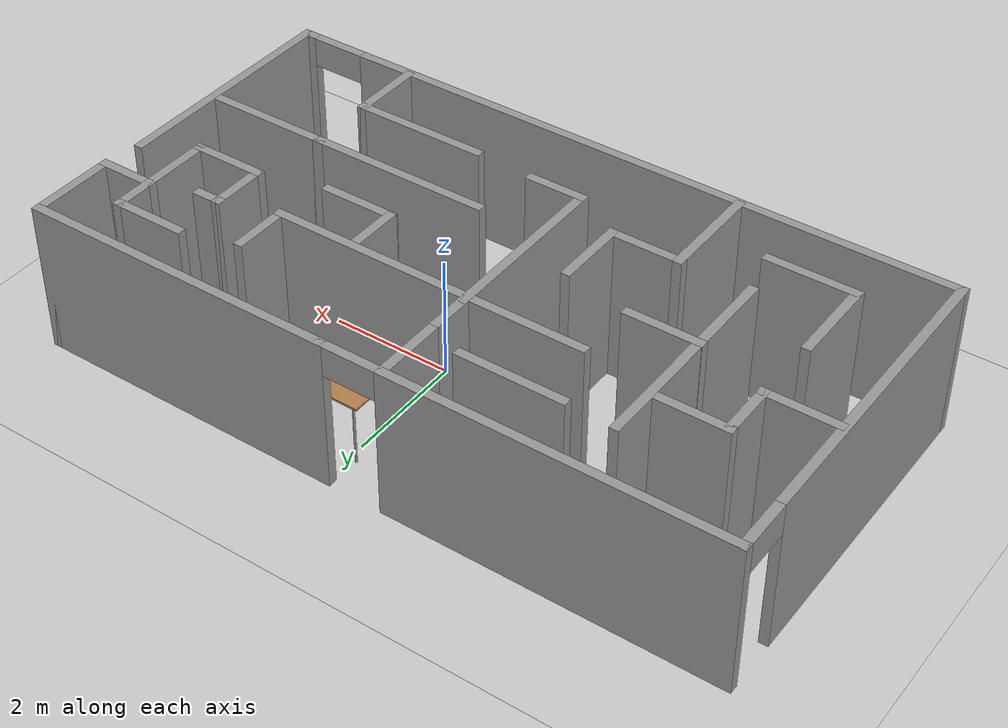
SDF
<sdf version="1.7">
 <world name="default">
  <light name="sun" type="directional">
   <pose>0 0 10 0 -0 0</pose>
   <diffuse>0.8 0.8 0.8 1</diffuse>
   <specular>0.2 0.2 0.2 1</specular>
   <attenuation>
    <range>1000</range>
    <constant>0.9</constant>
    <linear>0.01</linear>
    <quadratic>0.001</quadratic>
   </attenuation>
   <direction>-0.5 0.1 -0.9</direction>
   <spot><inner_angle>0</inner_angle><outer_angle>0</outer_angle><falloff>0</falloff></spot>
  </light>
  <gravity>0 0 -9.8</gravity>
  <magnetic_field>6e-06 2.3e-05 -4.2e-05</magnetic_field>
  <atmosphere type="adiabatic"/>
  <physics type="ode">
   <max_step_size>0.001</max_step_size>
   <real_time_factor>1</real_time_factor>
   <real_time_update_rate>1000</real_time_update_rate>
  </physics>
  <scene><ambient>0.4 0.4 0.4 1</ambient><background>0.7 0.7 0.7 1</background><shadows>1</shadows></scene>
  <audio><device>default</device></audio>
  <spherical_coordinates>
   <surface_model>EARTH_WGS84</surface_model>
   <latitude_deg>0</latitude_deg>
   <longitude_deg>0</longitude_deg>
   <elevation>0</elevation>
   <heading_deg>0</heading_deg>
  </spherical_coordinates>
  <model name="table">
   <static>1</static>
   <link name="link">
    <collision name="surface">
     <pose>0 0 1 0 -0 0</pose>
     <geometry><box><size>1.5 0.8 0.03</size></box></geometry>
     <surface><friction><ode><mu>0.6</mu><mu2>0.6</mu2></ode></friction></surface>
    </collision>
    <visual name="visual1">
     <pose>0 0 1 0 -0 0</pose>
     <geometry><box><size>1.5 0.8 0.03</size></box></geometry>
     <material>
      <script><uri>file://media/materials/scripts/gazebo.material</uri><name>Gazebo/Wood</name></script>
     </material>
    </visual>
    <collision name="front_left_leg">
     <pose>0.68 0.38 0.5 0 -0 0</pose>
     <geometry><cylinder><radius>0.02</radius><length>1</length></cylinder></geometry>
    </collision>
    <visual name="front_left_leg">
     <pose>0.68 0.38 0.5 0 -0 0</pose>
     <geometry><cylinder><radius>0.02</radius><length>1</length></cylinder></geometry>
     <material>
      <script><uri>file://media/materials/scripts/gazebo.material</uri><name>Gazebo/Grey</name></script>
     </material>
    </visual>
    <collision name="front_right_leg">
     <pose>0.68 -0.38 0.5 0 -0 0</pose>
     <geometry><cylinder><radius>0.02</radius><length>1</length></cylinder></geometry>
    </collision>
    <visual name="front_right_leg">
     <pose>0.68 -0.38 0.5 0 -0 0</pose>
     <geometry><cylinder><radius>0.02</radius><length>1</length></cylinder></geometry>
     <material>
      <script><uri>file://media/materials/scripts/gazebo.material</uri><name>Gazebo/Grey</name></script>
     </material>
    </visual>
    <collision name="back_right_leg">
     <pose>-0.68 -0.38 0.5 0 -0 0</pose>
     <geometry><cylinder><radius>0.02</radius><length>1</length></cylinder></geometry>
    </collision>
    <visual name="back_right_leg">
     <pose>-0.68 -0.38 0.5 0 -0 0</pose>
     <geometry><cylinder><radius>0.02</radius><length>1</length></cylinder></geometry>
     <material>
      <script><uri>file://media/materials/scripts/gazebo.material</uri><name>Gazebo/Grey</name></script>
     </material>
    </visual>
    <collision name="back_left_leg">
     <pose>-0.68 0.38 0.5 0 -0 0</pose>
     <geometry><cylinder><radius>0.02</radius><length>1</length></cylinder></geometry>
    </collision>
    <visual name="back_left_leg">
     <pose>-0.68 0.38 0.5 0 -0 0</pose>
     <geometry><cylinder><radius>0.02</radius><length>1</length></cylinder></geometry>
     <material>
      <script><uri>file://media/materials/scripts/gazebo.material</uri><name>Gazebo/Grey</name></script>
     </material>
    </visual>
   </link>
   <pose>0.560017 1.89403 0 0 -0 0</pose>
  </model>
  <model name="ground_plane">
   <static>1</static>
   <link name="link">
    <collision name="collision">
     <geometry><plane><normal>0 0 1</normal><size>100 100</size></plane></geometry>
     <surface>
      <contact><collide_bitmask>65535</collide_bitmask></contact>
      <friction><ode><mu>100</mu><mu2>50</mu2></ode></friction>
     </surface>
    </collision>
    <visual name="visual">
     <cast_shadows>0</cast_shadows>
     <geometry><plane><normal>0 0 1</normal><size>100 100</size></plane></geometry>
     <material>
      <script><uri>file://media/materials/scripts/gazebo.material</uri><name>Gazebo/Grey</name></script>
     </material>
    </visual>
   </link>
  </model>
  <model name="Maze">
   <pose>-0.678821 0.616067 0 0 -0 0</pose>
   <link name="Wall_0">
    <collision name="Wall_0_Collision">
     <geometry><box><size>5.25 0.15 2.5</size></box></geometry>
     <pose>0 0 1.25 0 -0 0</pose>
    </collision>
    <visual name="Wall_0_Visual">
     <pose>0 0 1.25 0 -0 0</pose>
     <geometry><box><size>5.25 0.15 2.5</size></box></geometry>
     <material>
      <script><uri>file://media/materials/scripts/gazebo.material</uri><name>Gazebo/Grey</name></script>
      <ambient>1 1 1 1</ambient>
     </material>
     <meta><layer>0</layer></meta>
    </visual>
    <pose>3.175 2.18272 0 0 -0 0</pose>
   </link>
   <link name="Wall_1">
    <collision name="Wall_1_Collision">
     <geometry><box><size>1.5 0.15 2.5</size></box></geometry>
     <pose>0 0 1.25 0 -0 0</pose>
    </collision>
    <visual name="Wall_1_Visual">
     <pose>0 0 1.25 0 -0 0</pose>
     <geometry><box><size>1.5 0.15 2.5</size></box></geometry>
     <material>
      <script><uri>file://media/materials/scripts/gazebo.material</uri><name>Gazebo/Grey</name></script>
      <ambient>1 1 1 1</ambient>
     </material>
     <meta><layer>0</layer></meta>
    </visual>
    <pose>5.725 1.50772 0 0 -0 -1.5708</pose>
   </link>
   <link name="Wall_11">
    <pose>-2.55 2.18272 0 0 -0 3.14159</pose>
    <visual name="Wall_11_Visual_0">
     <pose>-3.19088 0 1.25 0 -0 0</pose>
     <geometry><box><size>0.118239 0.15 2.5</size></box></geometry>
     <material>
      <script><uri>file://media/materials/scripts/gazebo.material</uri><name>Gazebo/Grey</name></script>
      <ambient>1 1 1 1</ambient>
     </material>
     <meta><layer>0</layer></meta>
    </visual>
    <collision name="Wall_11_Collision_0">
     <geometry><box><size>0.118239 0.15 2.5</size></box></geometry>
     <pose>-3.19088 0 1.25 0 -0 0</pose>
    </collision>
    <visual name="Wall_11_Visual_1">
     <pose>0.509119 0 1.25 0 -0 0</pose>
     <geometry><box><size>5.48176 0.15 2.5</size></box></geometry>
     <material>
      <script><uri>file://media/materials/scripts/gazebo.material</uri><name>Gazebo/Grey</name></script>
      <ambient>1 1 1 1</ambient>
     </material>
     <meta><layer>0</layer></meta>
    </visual>
    <collision name="Wall_11_Collision_1">
     <geometry><box><size>5.48176 0.15 2.5</size></box></geometry>
     <pose>0.509119 0 1.25 0 -0 0</pose>
    </collision>
    <visual name="Wall_11_Visual_2">
     <pose>-2.68176 0 2.25 0 -0 0</pose>
     <geometry><box><size>0.9 0.15 0.5</size></box></geometry>
     <material>
      <script><uri>file://media/materials/scripts/gazebo.material</uri><name>Gazebo/Grey</name></script>
      <ambient>1 1 1 1</ambient>
     </material>
     <meta><layer>0</layer></meta>
    </visual>
    <collision name="Wall_11_Collision_2">
     <geometry><box><size>0.9 0.15 0.5</size></box></geometry>
     <pose>-2.68176 0 2.25 0 -0 0</pose>
    </collision>
   </link>
   <link name="Wall_12">
    <pose>-5.725 -0.742282 0 0 -0 -1.5708</pose>
    <visual name="Wall_12_Visual_0">
     <pose>-2.98042 0 1.25 0 -0 0</pose>
     <geometry><box><size>0.039169 0.15 2.5</size></box></geometry>
     <material>
      <script><uri>file://media/materials/scripts/gazebo.material</uri><name>Gazebo/Grey</name></script>
      <ambient>1 1 1 1</ambient>
     </material>
     <meta><layer>0</layer></meta>
    </visual>
    <collision name="Wall_12_Collision_0">
     <geometry><box><size>0.039169 0.15 2.5</size></box></geometry>
     <pose>-2.98042 0 1.25 0 -0 0</pose>
    </collision>
    <visual name="Wall_12_Visual_1">
     <pose>0.469584 0 1.25 0 -0 0</pose>
     <geometry><box><size>5.06083 0.15 2.5</size></box></geometry>
     <material>
      <script><uri>file://media/materials/scripts/gazebo.material</uri><name>Gazebo/Grey</name></script>
      <ambient>1 1 1 1</ambient>
     </material>
     <meta><layer>0</layer></meta>
    </visual>
    <collision name="Wall_12_Collision_1">
     <geometry><box><size>5.06083 0.15 2.5</size></box></geometry>
     <pose>0.469584 0 1.25 0 -0 0</pose>
    </collision>
    <visual name="Wall_12_Visual_2">
     <pose>-2.51083 0 2.25 0 -0 0</pose>
     <geometry><box><size>0.9 0.15 0.5</size></box></geometry>
     <material>
      <script><uri>file://media/materials/scripts/gazebo.material</uri><name>Gazebo/Grey</name></script>
      <ambient>1 1 1 1</ambient>
     </material>
     <meta><layer>0</layer></meta>
    </visual>
    <collision name="Wall_12_Collision_2">
     <geometry><box><size>0.9 0.15 0.5</size></box></geometry>
     <pose>-2.51083 0 2.25 0 -0 0</pose>
    </collision>
   </link>
   <link name="Wall_13">
    <pose>-0.05 -3.66728 0 0 -0 0</pose>
    <visual name="Wall_13_Visual_0">
     <pose>-0.59542 0 1.25 0 -0 0</pose>
     <geometry><box><size>10.3092 0.15 2.5</size></box></geometry>
     <material>
      <script><uri>file://media/materials/scripts/gazebo.material</uri><name>Gazebo/Grey</name></script>
      <ambient>1 1 1 1</ambient>
     </material>
     <meta><layer>0</layer></meta>
    </visual>
    <collision name="Wall_13_Collision_0">
     <geometry><box><size>10.3092 0.15 2.5</size></box></geometry>
     <pose>-0.59542 0 1.25 0 -0 0</pose>
    </collision>
    <visual name="Wall_13_Visual_1">
     <pose>5.60458 0 1.25 0 -0 0</pose>
     <geometry><box><size>0.29084 0.15 2.5</size></box></geometry>
     <material>
      <script><uri>file://media/materials/scripts/gazebo.material</uri><name>Gazebo/Grey</name></script>
      <ambient>1 1 1 1</ambient>
     </material>
     <meta><layer>0</layer></meta>
    </visual>
    <collision name="Wall_13_Collision_1">
     <geometry><box><size>0.29084 0.15 2.5</size></box></geometry>
     <pose>5.60458 0 1.25 0 -0 0</pose>
    </collision>
    <visual name="Wall_13_Visual_2">
     <pose>5.00916 0 2.25 0 -0 0</pose>
     <geometry><box><size>0.9 0.15 0.5</size></box></geometry>
     <material>
      <script><uri>file://media/materials/scripts/gazebo.material</uri><name>Gazebo/Grey</name></script>
      <ambient>1 1 1 1</ambient>
     </material>
     <meta><layer>0</layer></meta>
    </visual>
    <collision name="Wall_13_Collision_2">
     <geometry><box><size>0.9 0.15 0.5</size></box></geometry>
     <pose>5.00916 0 2.25 0 -0 0</pose>
    </collision>
   </link>
   <link name="Wall_14">
    <collision name="Wall_14_Collision">
     <geometry><box><size>4 0.15 2.5</size></box></geometry>
     <pose>0 0 1.25 0 -0 0</pose>
    </collision>
    <visual name="Wall_14_Visual">
     <pose>0 0 1.25 0 -0 0</pose>
     <geometry><box><size>4 0.15 2.5</size></box></geometry>
     <material>
      <script><uri>file://media/materials/scripts/gazebo.material</uri><name>Gazebo/Grey</name></script>
      <ambient>1 1 1 1</ambient>
     </material>
     <meta><layer>0</layer></meta>
    </visual>
    <pose>5.625 -1.74228 0 0 -0 1.5708</pose>
   </link>
   <link name="Wall_19">
    <collision name="Wall_19_Collision">
     <geometry><box><size>1.75 0.15 2.5</size></box></geometry>
     <pose>0 0 1.25 0 -0 0</pose>
    </collision>
    <visual name="Wall_19_Visual">
     <pose>0 0 1.25 0 -0 0</pose>
     <geometry><box><size>1.75 0.15 2.5</size></box></geometry>
     <material>
      <script><uri>file://media/materials/scripts/gazebo.material</uri><name>Gazebo/Grey</name></script>
      <ambient>1 1 1 1</ambient>
     </material>
     <meta><layer>0</layer></meta>
    </visual>
    <pose>-2.28694 -2.82537 0 0 -0 -1.5708</pose>
   </link>
   <link name="Wall_2">
    <collision name="Wall_2_Collision">
     <geometry><box><size>1 0.15 2.5</size></box></geometry>
     <pose>0 0 1.25 0 -0 0</pose>
    </collision>
    <visual name="Wall_2_Visual">
     <pose>0 0 1.25 0 -0 0</pose>
     <geometry><box><size>1 0.15 2.5</size></box></geometry>
     <material>
      <script><uri>file://media/materials/scripts/gazebo.material</uri><name>Gazebo/Grey</name></script>
      <ambient>1 1 1 1</ambient>
     </material>
     <meta><layer>0</layer></meta>
    </visual>
    <pose>5.3 0.832718 0 0 -0 3.14159</pose>
   </link>
   <link name="Wall_22">
    <collision name="Wall_22_Collision">
     <geometry><box><size>3 0.15 2.5</size></box></geometry>
     <pose>0 0 1.25 0 -0 0</pose>
    </collision>
    <visual name="Wall_22_Visual">
     <pose>0 0 1.25 0 -0 0</pose>
     <geometry><box><size>3 0.15 2.5</size></box></geometry>
     <material>
      <script><uri>file://media/materials/scripts/gazebo.material</uri><name>Gazebo/Grey</name></script>
      <ambient>1 1 1 1</ambient>
     </material>
     <meta><layer>0</layer></meta>
    </visual>
    <pose>2.1105 -1.43729 0 0 -0 0</pose>
   </link>
   <link name="Wall_23">
    <collision name="Wall_23_Collision">
     <geometry><box><size>0.25 0.15 2.5</size></box></geometry>
     <pose>0 0 1.25 0 -0 0</pose>
    </collision>
    <visual name="Wall_23_Visual">
     <pose>0 0 1.25 0 -0 0</pose>
     <geometry><box><size>0.25 0.15 2.5</size></box></geometry>
     <material>
      <script><uri>file://media/materials/scripts/gazebo.material</uri><name>Gazebo/Grey</name></script>
      <ambient>1 1 1 1</ambient>
     </material>
     <meta><layer>0</layer></meta>
    </visual>
    <pose>3.5855 -1.43729 0 0 -0 0</pose>
   </link>
   <link name="Wall_24">
    <collision name="Wall_24_Collision">
     <geometry><box><size>2 0.15 2.5</size></box></geometry>
     <pose>0 0 1.25 0 -0 0</pose>
    </collision>
    <visual name="Wall_24_Visual">
     <pose>0 0 1.25 0 -0 0</pose>
     <geometry><box><size>2 0.15 2.5</size></box></geometry>
     <material>
      <script><uri>file://media/materials/scripts/gazebo.material</uri><name>Gazebo/Grey</name></script>
      <ambient>1 1 1 1</ambient>
     </material>
     <meta><layer>0</layer></meta>
    </visual>
    <pose>4.5605 -1.43729 0 0 -0 0</pose>
   </link>
   <link name="Wall_26">
    <collision name="Wall_26_Collision">
     <geometry><box><size>1.25 0.15 2.5</size></box></geometry>
     <pose>0 0 1.25 0 -0 0</pose>
    </collision>
    <visual name="Wall_26_Visual">
     <pose>0 0 1.25 0 -0 0</pose>
     <geometry><box><size>1.25 0.15 2.5</size></box></geometry>
     <material>
      <script><uri>file://media/materials/scripts/gazebo.material</uri><name>Gazebo/Grey</name></script>
      <ambient>1 1 1 1</ambient>
     </material>
     <meta><layer>0</layer></meta>
    </visual>
    <pose>-1.73694 -2.02537 0 0 -0 0</pose>
   </link>
   <link name="Wall_27">
    <collision name="Wall_27_Collision">
     <geometry><box><size>1.25 0.15 2.5</size></box></geometry>
     <pose>0 0 1.25 0 -0 0</pose>
    </collision>
    <visual name="Wall_27_Visual">
     <pose>0 0 1.25 0 -0 0</pose>
     <geometry><box><size>1.25 0.15 2.5</size></box></geometry>
     <material>
      <script><uri>file://media/materials/scripts/gazebo.material</uri><name>Gazebo/Grey</name></script>
      <ambient>1 1 1 1</ambient>
     </material>
     <meta><layer>0</layer></meta>
    </visual>
    <pose>-1.18694 -1.47537 0 0 -0 1.5708</pose>
   </link>
   <link name="Wall_29">
    <collision name="Wall_29_Collision">
     <geometry><box><size>3.5 0.15 2.5</size></box></geometry>
     <pose>0 0 1.25 0 -0 0</pose>
    </collision>
    <visual name="Wall_29_Visual">
     <pose>0 0 1.25 0 -0 0</pose>
     <geometry><box><size>3.5 0.15 2.5</size></box></geometry>
     <material>
      <script><uri>file://media/materials/scripts/gazebo.material</uri><name>Gazebo/Grey</name></script>
      <ambient>1 1 1 1</ambient>
     </material>
     <meta><layer>0</layer></meta>
    </visual>
    <pose>-3.41126 -0.359615 0 0 -0 -1.5708</pose>
   </link>
   <link name="Wall_3">
    <collision name="Wall_3_Collision">
     <geometry><box><size>0.75 0.15 2.5</size></box></geometry>
     <pose>0 0 1.25 0 -0 0</pose>
    </collision>
    <visual name="Wall_3_Visual">
     <pose>0 0 1.25 0 -0 0</pose>
     <geometry><box><size>0.75 0.15 2.5</size></box></geometry>
     <material>
      <script><uri>file://media/materials/scripts/gazebo.material</uri><name>Gazebo/Grey</name></script>
      <ambient>1 1 1 1</ambient>
     </material>
     <meta><layer>0</layer></meta>
    </visual>
    <pose>4.875 1.13272 0 0 -0 1.5708</pose>
   </link>
   <link name="Wall_31">
    <collision name="Wall_31_Collision">
     <geometry><box><size>1.25 0.15 2.5</size></box></geometry>
     <pose>0 0 1.25 0 -0 0</pose>
    </collision>
    <visual name="Wall_31_Visual">
     <pose>0 0 1.25 0 -0 0</pose>
     <geometry><box><size>1.25 0.15 2.5</size></box></geometry>
     <material>
      <script><uri>file://media/materials/scripts/gazebo.material</uri><name>Gazebo/Grey</name></script>
      <ambient>1 1 1 1</ambient>
     </material>
     <meta><layer>0</layer></meta>
    </visual>
    <pose>-4.02093 0.539789 0 0 -0 3.14159</pose>
   </link>
   <link name="Wall_32">
    <collision name="Wall_32_Collision">
     <geometry><box><size>1 0.15 2.5</size></box></geometry>
     <pose>0 0 1.25 0 -0 0</pose>
    </collision>
    <visual name="Wall_32_Visual">
     <pose>0 0 1.25 0 -0 0</pose>
     <geometry><box><size>1 0.15 2.5</size></box></geometry>
     <material>
      <script><uri>file://media/materials/scripts/gazebo.material</uri><name>Gazebo/Grey</name></script>
      <ambient>1 1 1 1</ambient>
     </material>
     <meta><layer>0</layer></meta>
    </visual>
    <pose>-4.57092 0.114789 0 0 -0 -1.5708</pose>
   </link>
   <link name="Wall_33">
    <collision name="Wall_33_Collision">
     <geometry><box><size>1.25 0.15 2.5</size></box></geometry>
     <pose>0 0 1.25 0 -0 0</pose>
    </collision>
    <visual name="Wall_33_Visual">
     <pose>0 0 1.25 0 -0 0</pose>
     <geometry><box><size>1.25 0.15 2.5</size></box></geometry>
     <material>
      <script><uri>file://media/materials/scripts/gazebo.material</uri><name>Gazebo/Grey</name></script>
      <ambient>1 1 1 1</ambient>
     </material>
     <meta><layer>0</layer></meta>
    </visual>
    <pose>-5.12092 -0.310211 0 0 -0 3.14159</pose>
   </link>
   <link name="Wall_35">
    <collision name="Wall_35_Collision">
     <geometry><box><size>5.25 0.15 2.5</size></box></geometry>
     <pose>0 0 1.25 0 -0 0</pose>
    </collision>
    <visual name="Wall_35_Visual">
     <pose>0 0 1.25 0 -0 0</pose>
     <geometry><box><size>5.25 0.15 2.5</size></box></geometry>
     <material>
      <script><uri>file://media/materials/scripts/gazebo.material</uri><name>Gazebo/Grey</name></script>
      <ambient>1 1 1 1</ambient>
     </material>
     <meta><layer>0</layer></meta>
    </visual>
    <pose>0.312074 0.301145 0 0 -0 0</pose>
   </link>
   <link name="Wall_36">
    <collision name="Wall_36_Collision">
     <geometry><box><size>1 0.15 2.5</size></box></geometry>
     <pose>0 0 1.25 0 -0 0</pose>
    </collision>
    <visual name="Wall_36_Visual">
     <pose>0 0 1.25 0 -0 0</pose>
     <geometry><box><size>1 0.15 2.5</size></box></geometry>
     <material>
      <script><uri>file://media/materials/scripts/gazebo.material</uri><name>Gazebo/Grey</name></script>
      <ambient>1 1 1 1</ambient>
     </material>
     <meta><layer>0</layer></meta>
    </visual>
    <pose>2.86207 0.726145 0 0 -0 1.5708</pose>
   </link>
   <link name="Wall_38">
    <collision name="Wall_38_Collision">
     <geometry><box><size>3 0.15 2.5</size></box></geometry>
     <pose>0 0 1.25 0 -0 0</pose>
    </collision>
    <visual name="Wall_38_Visual">
     <pose>0 0 1.25 0 -0 0</pose>
     <geometry><box><size>3 0.15 2.5</size></box></geometry>
     <material>
      <script><uri>file://media/materials/scripts/gazebo.material</uri><name>Gazebo/Grey</name></script>
      <ambient>1 1 1 1</ambient>
     </material>
     <meta><layer>0</layer></meta>
    </visual>
    <pose>-0.388429 -1.04431 0 0 -0 -1.5708</pose>
   </link>
   <link name="Wall_4">
    <collision name="Wall_4_Collision">
     <geometry><box><size>1.25 0.15 2.5</size></box></geometry>
     <pose>0 0 1.25 0 -0 0</pose>
    </collision>
    <visual name="Wall_4_Visual">
     <pose>0 0 1.25 0 -0 0</pose>
     <geometry><box><size>1.25 0.15 2.5</size></box></geometry>
     <material>
      <script><uri>file://media/materials/scripts/gazebo.material</uri><name>Gazebo/Grey</name></script>
      <ambient>1 1 1 1</ambient>
     </material>
     <meta><layer>0</layer></meta>
    </visual>
    <pose>4.325 1.43272 0 0 -0 3.14159</pose>
   </link>
   <link name="Wall_40">
    <collision name="Wall_40_Collision">
     <geometry><box><size>0.75 0.15 2.5</size></box></geometry>
     <pose>0 0 1.25 0 -0 0</pose>
    </collision>
    <visual name="Wall_40_Visual">
     <pose>0 0 1.25 0 -0 0</pose>
     <geometry><box><size>0.75 0.15 2.5</size></box></geometry>
     <material>
      <script><uri>file://media/materials/scripts/gazebo.material</uri><name>Gazebo/Grey</name></script>
      <ambient>1 1 1 1</ambient>
     </material>
     <meta><layer>0</layer></meta>
    </visual>
    <pose>-0.388429 0.680693 0 0 -0 1.5708</pose>
   </link>
   <link name="Wall_41">
    <collision name="Wall_41_Collision">
     <geometry><box><size>1.25 0.15 2.5</size></box></geometry>
     <pose>0 0 1.25 0 -0 0</pose>
    </collision>
    <visual name="Wall_41_Visual">
     <pose>0 0 1.25 0 -0 0</pose>
     <geometry><box><size>1.25 0.15 2.5</size></box></geometry>
     <material>
      <script><uri>file://media/materials/scripts/gazebo.material</uri><name>Gazebo/Grey</name></script>
      <ambient>1 1 1 1</ambient>
     </material>
     <meta><layer>0</layer></meta>
    </visual>
    <pose>-0.388429 1.53069 0 0 -0 1.5708</pose>
   </link>
   <link name="Wall_43">
    <collision name="Wall_43_Collision">
     <geometry><box><size>1.75 0.15 2.5</size></box></geometry>
     <pose>0 0 1.25 0 -0 0</pose>
    </collision>
    <visual name="Wall_43_Visual">
     <pose>0 0 1.25 0 -0 0</pose>
     <geometry><box><size>1.75 0.15 2.5</size></box></geometry>
     <material>
      <script><uri>file://media/materials/scripts/gazebo.material</uri><name>Gazebo/Grey</name></script>
      <ambient>1 1 1 1</ambient>
     </material>
     <meta><layer>0</layer></meta>
    </visual>
    <pose>-1.79589 1.2955 0 0 -0 0</pose>
   </link>
   <link name="Wall_45">
    <collision name="Wall_45_Collision">
     <geometry><box><size>1.5 0.15 2.5</size></box></geometry>
     <pose>0 0 1.25 0 -0 0</pose>
    </collision>
    <visual name="Wall_45_Visual">
     <pose>0 0 1.25 0 -0 0</pose>
     <geometry><box><size>1.5 0.15 2.5</size></box></geometry>
     <material>
      <script><uri>file://media/materials/scripts/gazebo.material</uri><name>Gazebo/Grey</name></script>
      <ambient>1 1 1 1</ambient>
     </material>
     <meta><layer>0</layer></meta>
    </visual>
    <pose>-4.60449 -2.10403 0 0 -0 -1.5708</pose>
   </link>
   <link name="Wall_46">
    <collision name="Wall_46_Collision">
     <geometry><box><size>1.5 0.15 2.5</size></box></geometry>
     <pose>0 0 1.25 0 -0 0</pose>
    </collision>
    <visual name="Wall_46_Visual">
     <pose>0 0 1.25 0 -0 0</pose>
     <geometry><box><size>1.5 0.15 2.5</size></box></geometry>
     <material>
      <script><uri>file://media/materials/scripts/gazebo.material</uri><name>Gazebo/Grey</name></script>
      <ambient>1 1 1 1</ambient>
     </material>
     <meta><layer>0</layer></meta>
    </visual>
    <pose>-3.92949 -2.77903 0 0 -0 0</pose>
   </link>
   <link name="Wall_48">
    <collision name="Wall_48_Collision">
     <geometry><box><size>2.25 0.15 2.5</size></box></geometry>
     <pose>0 0 1.25 0 -0 0</pose>
    </collision>
    <visual name="Wall_48_Visual">
     <pose>0 0 1.25 0 -0 0</pose>
     <geometry><box><size>2.25 0.15 2.5</size></box></geometry>
     <material>
      <script><uri>file://media/materials/scripts/gazebo.material</uri><name>Gazebo/Grey</name></script>
      <ambient>1 1 1 1</ambient>
     </material>
     <meta><layer>0</layer></meta>
    </visual>
    <pose>2.53096 -2.52282 0 0 -0 0</pose>
   </link>
   <link name="Wall_49">
    <collision name="Wall_49_Collision">
     <geometry><box><size>1.25 0.15 2.5</size></box></geometry>
     <pose>0 0 1.25 0 -0 0</pose>
    </collision>
    <visual name="Wall_49_Visual">
     <pose>0 0 1.25 0 -0 0</pose>
     <geometry><box><size>1.25 0.15 2.5</size></box></geometry>
     <material>
      <script><uri>file://media/materials/scripts/gazebo.material</uri><name>Gazebo/Grey</name></script>
      <ambient>1 1 1 1</ambient>
     </material>
     <meta><layer>0</layer></meta>
    </visual>
    <pose>3.58096 -3.07282 0 0 -0 -1.5708</pose>
   </link>
   <link name="Wall_51">
    <collision name="Wall_51_Collision">
     <geometry><box><size>1.25 0.15 2.5</size></box></geometry>
     <pose>0 0 1.25 0 -0 0</pose>
    </collision>
    <visual name="Wall_51_Visual">
     <pose>0 0 1.25 0 -0 0</pose>
     <geometry><box><size>1.25 0.15 2.5</size></box></geometry>
     <material>
      <script><uri>file://media/materials/scripts/gazebo.material</uri><name>Gazebo/Grey</name></script>
      <ambient>1 1 1 1</ambient>
     </material>
     <meta><layer>0</layer></meta>
    </visual>
    <pose>-2.86748 -0.673322 0 0 -0 3.14159</pose>
   </link>
   <link name="Wall_53">
    <collision name="Wall_53_Collision">
     <geometry><box><size>0.965889 0.15 2.5</size></box></geometry>
     <pose>0 0 1.25 0 -0 0</pose>
    </collision>
    <visual name="Wall_53_Visual">
     <pose>0 0 1.25 0 -0 0</pose>
     <geometry><box><size>0.965889 0.15 2.5</size></box></geometry>
     <material>
      <script><uri>file://media/materials/scripts/gazebo.material</uri><name>Gazebo/Grey</name></script>
      <ambient>1 1 1 1</ambient>
     </material>
     <meta><layer>0</layer></meta>
    </visual>
    <pose>1.58039 -0.135248 0 0 -0 -1.5708</pose>
   </link>
   <link name="Wall_54">
    <collision name="Wall_54_Collision">
     <geometry><box><size>1.25 0.15 2.5</size></box></geometry>
     <pose>0 0 1.25 0 -0 0</pose>
    </collision>
    <visual name="Wall_54_Visual">
     <pose>0 0 1.25 0 -0 0</pose>
     <geometry><box><size>1.25 0.15 2.5</size></box></geometry>
     <material>
      <script><uri>file://media/materials/scripts/gazebo.material</uri><name>Gazebo/Grey</name></script>
      <ambient>1 1 1 1</ambient>
     </material>
     <meta><layer>0</layer></meta>
    </visual>
    <pose>2.13039 -0.554563 0 0 -0 0</pose>
   </link>
   <link name="Wall_56">
    <collision name="Wall_56_Collision">
     <geometry><box><size>1 0.15 2.5</size></box></geometry>
     <pose>0 0 1.25 0 -0 0</pose>
    </collision>
    <visual name="Wall_56_Visual">
     <pose>0 0 1.25 0 -0 0</pose>
     <geometry><box><size>1 0.15 2.5</size></box></geometry>
     <material>
      <script><uri>file://media/materials/scripts/gazebo.material</uri><name>Gazebo/Grey</name></script>
      <ambient>1 1 1 1</ambient>
     </material>
     <meta><layer>0</layer></meta>
    </visual>
    <pose>0.036571 -2.46931 0 0 -0 0</pose>
   </link>
   <link name="Wall_6">
    <collision name="Wall_6_Collision">
     <geometry><box><size>1.25 0.15 2.5</size></box></geometry>
     <pose>0 0 1.25 0 -0 0</pose>
    </collision>
    <visual name="Wall_6_Visual">
     <pose>0 0 1.25 0 -0 0</pose>
     <geometry><box><size>1.25 0.15 2.5</size></box></geometry>
     <material>
      <script><uri>file://media/materials/scripts/gazebo.material</uri><name>Gazebo/Grey</name></script>
      <ambient>1 1 1 1</ambient>
     </material>
     <meta><layer>0</layer></meta>
    </visual>
    <pose>4.875 0.282718 0 0 -0 -1.5708</pose>
   </link>
   <link name="Wall_7">
    <collision name="Wall_7_Collision">
     <geometry><box><size>1.25 0.15 2.5</size></box></geometry>
     <pose>0 0 1.25 0 -0 0</pose>
    </collision>
    <visual name="Wall_7_Visual">
     <pose>0 0 1.25 0 -0 0</pose>
     <geometry><box><size>1.25 0.15 2.5</size></box></geometry>
     <material>
      <script><uri>file://media/materials/scripts/gazebo.material</uri><name>Gazebo/Grey</name></script>
      <ambient>1 1 1 1</ambient>
     </material>
     <meta><layer>0</layer></meta>
    </visual>
    <pose>4.325 -0.267282 0 0 -0 3.14159</pose>
   </link>
   <link name="Wall_8">
    <collision name="Wall_8_Collision">
     <geometry><box><size>1 0.15 2.5</size></box></geometry>
     <pose>0 0 1.25 0 -0 0</pose>
    </collision>
    <visual name="Wall_8_Visual">
     <pose>0 0 1.25 0 -0 0</pose>
     <geometry><box><size>1 0.15 2.5</size></box></geometry>
     <material>
      <script><uri>file://media/materials/scripts/gazebo.material</uri><name>Gazebo/Grey</name></script>
      <ambient>1 1 1 1</ambient>
     </material>
     <meta><layer>0</layer></meta>
    </visual>
    <pose>3.775 0.157718 0 0 -0 1.5708</pose>
   </link>
   <link name="Wall_9">
    <collision name="Wall_9_Collision">
     <geometry><box><size>0.5 0.15 2.5</size></box></geometry>
     <pose>0 0 1.25 0 -0 0</pose>
    </collision>
    <visual name="Wall_9_Visual">
     <pose>0 0 1.25 0 -0 0</pose>
     <geometry><box><size>0.5 0.15 2.5</size></box></geometry>
     <material>
      <script><uri>file://media/materials/scripts/gazebo.material</uri><name>Gazebo/Grey</name></script>
      <ambient>1 1 1 1</ambient>
     </material>
     <meta><layer>0</layer></meta>
    </visual>
    <pose>3.95 0.582718 0 0 -0 0</pose>
   </link>
   <static>1</static>
  </model>
 </world>
</sdf>
